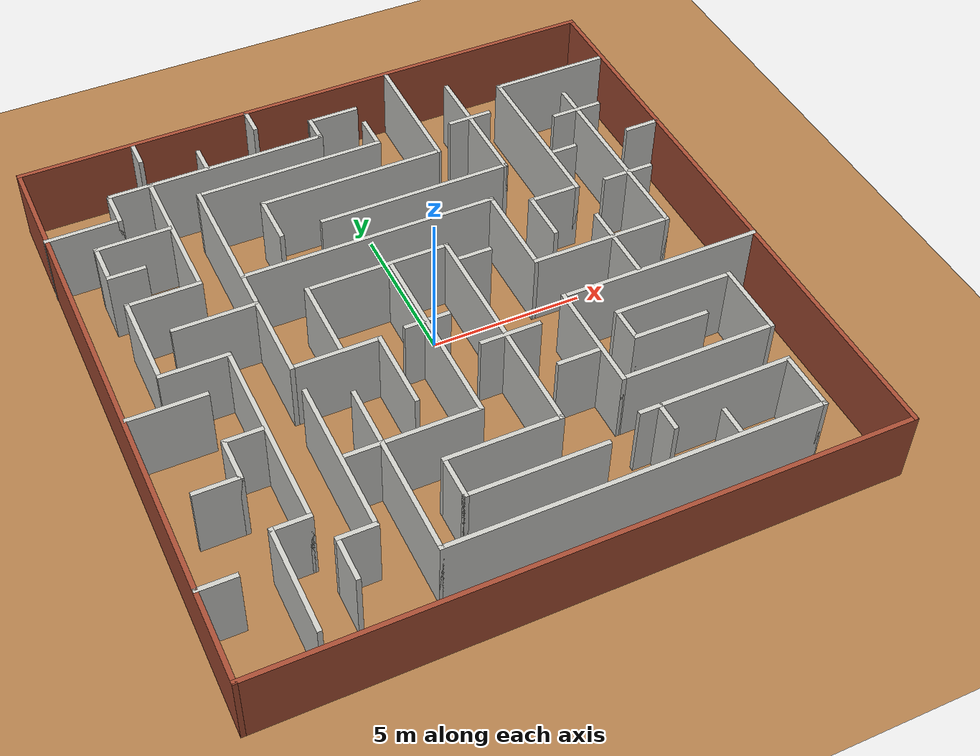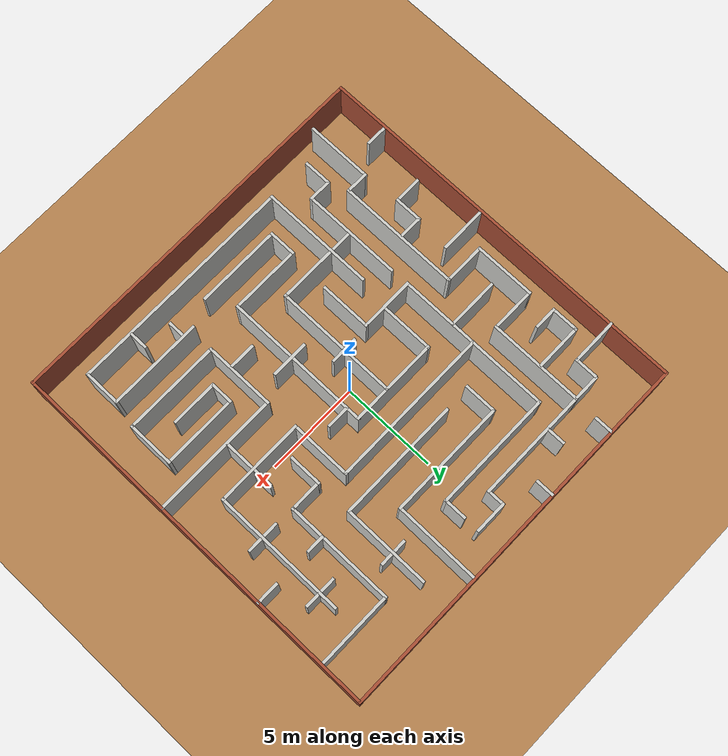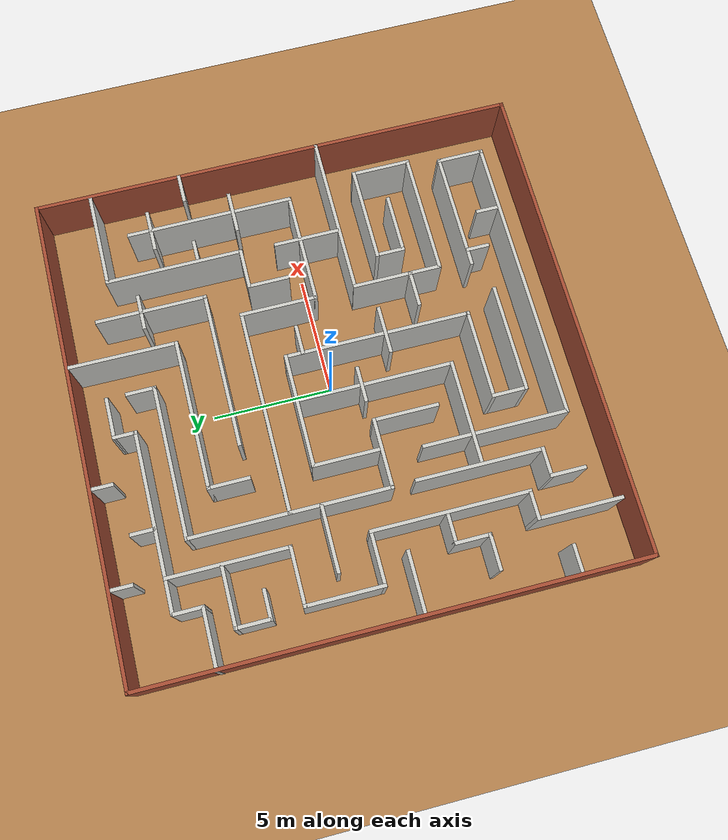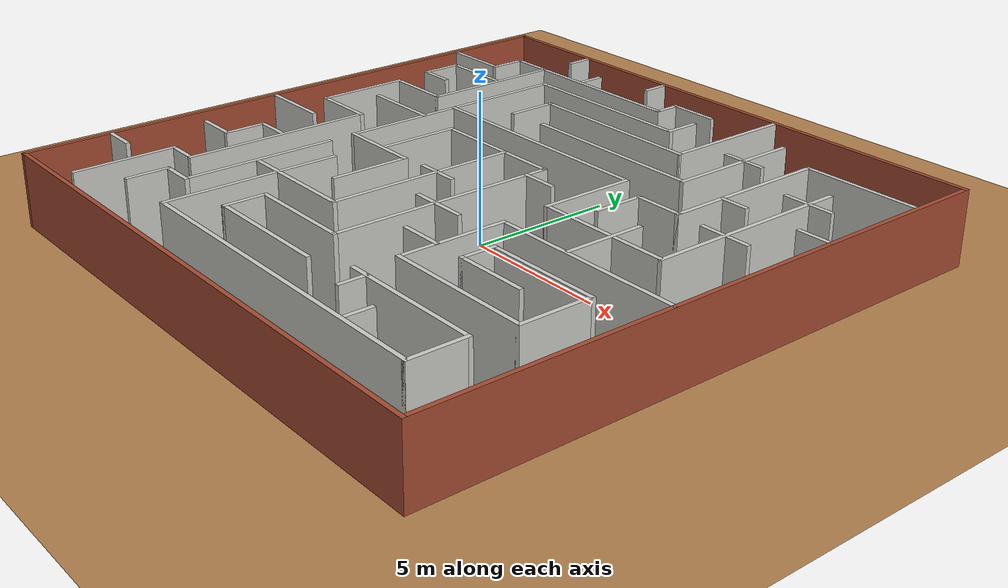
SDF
<sdf version="1.6">
 <world name="default">
  <light name="sun" type="directional">
   <pose>0 0 10 0 -0 0</pose>
   <diffuse>0.8 0.8 0.8 1</diffuse>
   <specular>0.2 0.2 0.2 1</specular>
   <attenuation>
    <range>1000</range>
    <constant>0.9</constant>
    <linear>0.01</linear>
    <quadratic>0.001</quadratic>
   </attenuation>
   <direction>-0.5 0.1 -0.9</direction>
  </light>
  <model name="ground_plane">
   <static>1</static>
   <link name="link">
    <collision name="collision">
     <geometry><plane><normal>0 0 1</normal><size>20 20</size></plane></geometry>
     <surface>
      <contact><collide_bitmask>65535</collide_bitmask></contact>
      <friction><ode><mu>100</mu><mu2>50</mu2></ode></friction>
     </surface>
    </collision>
    <visual name="visual">
     <cast_shadows>0</cast_shadows>
     <geometry><plane><normal>0 0 1</normal><size>20 20</size></plane></geometry>
     <material>
      <script><uri>file://media/materials/scripts/kitchen.material</uri><name>Kitchen/WoodFloor</name></script>
     </material>
    </visual>
   </link>
  </model>
  <gravity>0 0 -9.8</gravity>
  <magnetic_field>6e-06 2.3e-05 -4.2e-05</magnetic_field>
  <atmosphere type="adiabatic"/>
  <physics name="default_physics" default="0" type="ode">
   <max_step_size>0.001</max_step_size>
   <real_time_factor>1</real_time_factor>
   <real_time_update_rate>1000</real_time_update_rate>
  </physics>
  <scene><ambient>0.4 0.4 0.4 1</ambient><background>0.7 0.7 0.7 1</background><shadows>1</shadows></scene>
  <audio><device>default</device></audio>
  <spherical_coordinates>
   <surface_model>EARTH_WGS84</surface_model>
   <latitude_deg>0</latitude_deg>
   <longitude_deg>0</longitude_deg>
   <elevation>0</elevation>
   <heading_deg>0</heading_deg>
  </spherical_coordinates>
  <model name="maze-structure-colored">
   <pose>-0.006417 0.010984 0 0 -0 0</pose>
   <link name="Wall_10">
    <collision name="Wall_10_Collision">
     <geometry><box><size>20.2095 0.15 2.5</size></box></geometry>
     <pose>0 0 1.25 0 -0 0</pose>
    </collision>
    <visual name="Wall_10_Visual">
     <pose>0 0 1.25 0 -0 0</pose>
     <geometry><box><size>20.2095 0.15 2.5</size></box></geometry>
     <material>
      <script><uri>file://media/materials/scripts/gazebo.material</uri><name>Gazebo/Bricks</name></script>
      <ambient>0.996078 0.47451 0.0196078 1</ambient>
     </material>
     <meta><layer>0</layer></meta>
    </visual>
    <pose>0.00881 -10.175 0 0 -0 3.14159</pose>
   </link>
   <link name="Wall_101">
    <collision name="Wall_101_Collision">
     <geometry><box><size>2.5 0.15 2.5</size></box></geometry>
     <pose>0 0 1.25 0 -0 0</pose>
    </collision>
    <visual name="Wall_101_Visual">
     <pose>0 0 1.25 0 -0 0</pose>
     <geometry><box><size>2.5 0.15 2.5</size></box></geometry>
     <material>
      <script><uri>file://media/materials/scripts/gazebo.material</uri><name>Gazebo/CeilingTiled</name></script>
      <ambient>0.976471 0.94902 0.772549 1</ambient>
     </material>
     <meta><layer>0</layer></meta>
    </visual>
    <pose>-8.75958 -1.11398 0 0 -0 0</pose>
   </link>
   <link name="Wall_103">
    <collision name="Wall_103_Collision">
     <geometry><box><size>1.5 0.15 2.5</size></box></geometry>
     <pose>0 0 1.25 0 -0 0</pose>
    </collision>
    <visual name="Wall_103_Visual">
     <pose>0 0 1.25 0 -0 0</pose>
     <geometry><box><size>1.5 0.15 2.5</size></box></geometry>
     <material>
      <script><uri>file://media/materials/scripts/gazebo.material</uri><name>Gazebo/CeilingTiled</name></script>
      <ambient>0.976471 0.94902 0.772549 1</ambient>
     </material>
     <meta><layer>0</layer></meta>
    </visual>
    <pose>-8.39858 -4.30998 0 0 -0 0</pose>
   </link>
   <link name="Wall_104">
    <collision name="Wall_104_Collision">
     <geometry><box><size>1.5 0.15 2.5</size></box></geometry>
     <pose>0 0 1.25 0 -0 0</pose>
    </collision>
    <visual name="Wall_104_Visual">
     <pose>0 0 1.25 0 -0 0</pose>
     <geometry><box><size>1.5 0.15 2.5</size></box></geometry>
     <material>
      <script><uri>file://media/materials/scripts/gazebo.material</uri><name>Gazebo/CeilingTiled</name></script>
      <ambient>0.976471 0.94902 0.772549 1</ambient>
     </material>
     <meta><layer>0</layer></meta>
    </visual>
    <pose>-7.72358 -3.63498 0 0 -0 1.5708</pose>
   </link>
   <link name="Wall_105">
    <collision name="Wall_105_Collision">
     <geometry><box><size>1.25 0.15 2.5</size></box></geometry>
     <pose>0 0 1.25 0 -0 0</pose>
    </collision>
    <visual name="Wall_105_Visual">
     <pose>0 0 1.25 0 -0 0</pose>
     <geometry><box><size>1.25 0.15 2.5</size></box></geometry>
     <material>
      <script><uri>file://media/materials/scripts/gazebo.material</uri><name>Gazebo/CeilingTiled</name></script>
      <ambient>0.976471 0.94902 0.772549 1</ambient>
     </material>
     <meta><layer>0</layer></meta>
    </visual>
    <pose>-7.17358 -2.95998 0 0 -0 0</pose>
   </link>
   <link name="Wall_107">
    <collision name="Wall_107_Collision">
     <geometry><box><size>1.75 0.15 2.5</size></box></geometry>
     <pose>0 0 1.25 0 -0 0</pose>
    </collision>
    <visual name="Wall_107_Visual">
     <pose>0 0 1.25 0 -0 0</pose>
     <geometry><box><size>1.75 0.15 2.5</size></box></geometry>
     <material>
      <script><uri>file://media/materials/scripts/gazebo.material</uri><name>Gazebo/CeilingTiled</name></script>
      <ambient>0.976471 0.94902 0.772549 1</ambient>
     </material>
     <meta><layer>0</layer></meta>
    </visual>
    <pose>-3.34171 4.90352 0 0 -0 1.5708</pose>
   </link>
   <link name="Wall_108">
    <collision name="Wall_108_Collision">
     <geometry><box><size>6.25 0.15 2.5</size></box></geometry>
     <pose>0 0 1.25 0 -0 0</pose>
    </collision>
    <visual name="Wall_108_Visual">
     <pose>0 0 1.25 0 -0 0</pose>
     <geometry><box><size>6.25 0.15 2.5</size></box></geometry>
     <material>
      <script><uri>file://media/materials/scripts/gazebo.material</uri><name>Gazebo/CeilingTiled</name></script>
      <ambient>0.976471 0.94902 0.772549 1</ambient>
     </material>
     <meta><layer>0</layer></meta>
    </visual>
    <pose>-0.291712 5.70352 0 0 -0 0</pose>
   </link>
   <link name="Wall_109">
    <collision name="Wall_109_Collision">
     <geometry><box><size>4.50008 0.15 2.5</size></box></geometry>
     <pose>0 0 1.25 0 -0 0</pose>
    </collision>
    <visual name="Wall_109_Visual">
     <pose>0 0 1.25 0 -0 0</pose>
     <geometry><box><size>4.50008 0.15 2.5</size></box></geometry>
     <material>
      <script><uri>file://media/materials/scripts/gazebo.material</uri><name>Gazebo/CeilingTiled</name></script>
      <ambient>0.976471 0.94902 0.772549 1</ambient>
     </material>
     <meta><layer>0</layer></meta>
    </visual>
    <pose>2.77159 7.87852 0 0 -0 1.56468</pose>
   </link>
   <link name="Wall_11">
    <collision name="Wall_11_Collision">
     <geometry><box><size>20.5 0.15 2.5</size></box></geometry>
     <pose>0 0 1.25 0 -0 0</pose>
    </collision>
    <visual name="Wall_11_Visual">
     <pose>0 0 1.25 0 -0 0</pose>
     <geometry><box><size>20.5 0.15 2.5</size></box></geometry>
     <material>
      <script><uri>file://media/materials/scripts/gazebo.material</uri><name>Gazebo/Bricks</name></script>
      <ambient>0.996078 0.47451 0.0196078 1</ambient>
     </material>
     <meta><layer>0</layer></meta>
    </visual>
    <pose>-10.021 -0 0 0 -0 1.5708</pose>
   </link>
   <link name="Wall_111">
    <collision name="Wall_111_Collision">
     <geometry><box><size>1 0.15 2.5</size></box></geometry>
     <pose>0 0 1.25 0 -0 0</pose>
    </collision>
    <visual name="Wall_111_Visual">
     <pose>0 0 1.25 0 -0 0</pose>
     <geometry><box><size>1 0.15 2.5</size></box></geometry>
     <material>
      <script><uri>file://media/materials/scripts/gazebo.material</uri><name>Gazebo/CeilingTiled</name></script>
      <ambient>0.976471 0.94902 0.772549 1</ambient>
     </material>
     <meta><layer>0</layer></meta>
    </visual>
    <pose>-6.25294 9.70208 0 0 -0 1.5708</pose>
   </link>
   <link name="Wall_113">
    <collision name="Wall_113_Collision">
     <geometry><box><size>1 0.15 2.5</size></box></geometry>
     <pose>0 0 1.25 0 -0 0</pose>
    </collision>
    <visual name="Wall_113_Visual">
     <pose>0 0 1.25 0 -0 0</pose>
     <geometry><box><size>1 0.15 2.5</size></box></geometry>
     <material>
      <script><uri>file://media/materials/scripts/gazebo.material</uri><name>Gazebo/CeilingTiled</name></script>
      <ambient>0.976471 0.94902 0.772549 1</ambient>
     </material>
     <meta><layer>0</layer></meta>
    </visual>
    <pose>-2.29841 9.71384 0 0 -0 1.5708</pose>
   </link>
   <link name="Wall_115">
    <collision name="Wall_115_Collision">
     <geometry><box><size>1 0.15 2.5</size></box></geometry>
     <pose>0 0 1.25 0 -0 0</pose>
    </collision>
    <visual name="Wall_115_Visual">
     <pose>0 0 1.25 0 -0 0</pose>
     <geometry><box><size>1 0.15 2.5</size></box></geometry>
     <material>
      <script><uri>file://media/materials/scripts/gazebo.material</uri><name>Gazebo/CeilingTiled</name></script>
      <ambient>0.976471 0.94902 0.772549 1</ambient>
     </material>
     <meta><layer>0</layer></meta>
    </visual>
    <pose>-4.39199 8.50422 0 0 -0 1.5708</pose>
   </link>
   <link name="Wall_117">
    <collision name="Wall_117_Collision">
     <geometry><box><size>6.5 0.15 2.5</size></box></geometry>
     <pose>0 0 1.25 0 -0 0</pose>
    </collision>
    <visual name="Wall_117_Visual">
     <pose>0 0 1.25 0 -0 0</pose>
     <geometry><box><size>6.5 0.15 2.5</size></box></geometry>
     <material>
      <script><uri>file://media/materials/scripts/gazebo.material</uri><name>Gazebo/CeilingTiled</name></script>
      <ambient>0.976471 0.94902 0.772549 1</ambient>
     </material>
     <meta><layer>0</layer></meta>
    </visual>
    <pose>1.24878 4.16464 0 0 -0 0</pose>
   </link>
   <link name="Wall_118">
    <collision name="Wall_118_Collision">
     <geometry><box><size>4.617 0.15 2.5</size></box></geometry>
     <pose>0 0 1.25 0 -0 0</pose>
    </collision>
    <visual name="Wall_118_Visual">
     <pose>0 0 1.25 0 -0 0</pose>
     <geometry><box><size>4.617 0.15 2.5</size></box></geometry>
     <material>
      <script><uri>file://media/materials/scripts/gazebo.material</uri><name>Gazebo/CeilingTiled</name></script>
      <ambient>0.976471 0.94902 0.772549 1</ambient>
     </material>
     <meta><layer>0</layer></meta>
    </visual>
    <pose>4.42378 6.39814 0 0 -0 1.5708</pose>
   </link>
   <link name="Wall_120">
    <collision name="Wall_120_Collision">
     <geometry><box><size>1.5 0.15 2.5</size></box></geometry>
     <pose>0 0 1.25 0 -0 0</pose>
    </collision>
    <visual name="Wall_120_Visual">
     <pose>0 0 1.25 0 -0 0</pose>
     <geometry><box><size>1.5 0.15 2.5</size></box></geometry>
     <material>
      <script><uri>file://media/materials/scripts/gazebo.material</uri><name>Gazebo/CeilingTiled</name></script>
      <ambient>0.976471 0.94902 0.772549 1</ambient>
     </material>
     <meta><layer>0</layer></meta>
    </visual>
    <pose>4.41802 6.82308 0 0 -0 0</pose>
   </link>
   <link name="Wall_122">
    <collision name="Wall_122_Collision">
     <geometry><box><size>2.75 0.15 2.5</size></box></geometry>
     <pose>0 0 1.25 0 -0 0</pose>
    </collision>
    <visual name="Wall_122_Visual">
     <pose>0 0 1.25 0 -0 0</pose>
     <geometry><box><size>2.75 0.15 2.5</size></box></geometry>
     <material>
      <script><uri>file://media/materials/scripts/gazebo.material</uri><name>Gazebo/CeilingTiled</name></script>
      <ambient>0.976471 0.94902 0.772549 1</ambient>
     </material>
     <meta><layer>0</layer></meta>
    </visual>
    <pose>5.98285 -0.478507 0 0 -0 -1.5708</pose>
   </link>
   <link name="Wall_124">
    <collision name="Wall_124_Collision">
     <geometry><box><size>1.25 0.15 2.5</size></box></geometry>
     <pose>0 0 1.25 0 -0 0</pose>
    </collision>
    <visual name="Wall_124_Visual">
     <pose>0 0 1.25 0 -0 0</pose>
     <geometry><box><size>1.25 0.15 2.5</size></box></geometry>
     <material>
      <script><uri>file://media/materials/scripts/gazebo.material</uri><name>Gazebo/CeilingTiled</name></script>
      <ambient>0.976471 0.94902 0.772549 1</ambient>
     </material>
     <meta><layer>0</layer></meta>
    </visual>
    <pose>1.68281 0.868017 0 0 -0 0</pose>
   </link>
   <link name="Wall_126">
    <collision name="Wall_126_Collision">
     <geometry><box><size>6 0.15 2.5</size></box></geometry>
     <pose>0 0 1.25 0 -0 0</pose>
    </collision>
    <visual name="Wall_126_Visual">
     <pose>0 0 1.25 0 -0 0</pose>
     <geometry><box><size>6 0.15 2.5</size></box></geometry>
     <material>
      <script><uri>file://media/materials/scripts/gazebo.material</uri><name>Gazebo/CeilingTiled</name></script>
      <ambient>0.976471 0.94902 0.772549 1</ambient>
     </material>
     <meta><layer>0</layer></meta>
    </visual>
    <pose>-3.78718 -5.73237 0 0 -0 -1.5708</pose>
   </link>
   <link name="Wall_127">
    <collision name="Wall_127_Collision">
     <geometry><box><size>12 0.15 2.5</size></box></geometry>
     <pose>0 0 1.25 0 -0 0</pose>
    </collision>
    <visual name="Wall_127_Visual">
     <pose>0 0 1.25 0 -0 0</pose>
     <geometry><box><size>12 0.15 2.5</size></box></geometry>
     <material>
      <script><uri>file://media/materials/scripts/gazebo.material</uri><name>Gazebo/CeilingTiled</name></script>
      <ambient>0.976471 0.94902 0.772549 1</ambient>
     </material>
     <meta><layer>0</layer></meta>
    </visual>
    <pose>2.13782 -8.65737 0 0 -0 0</pose>
   </link>
   <link name="Wall_128">
    <collision name="Wall_128_Collision">
     <geometry><box><size>2 0.15 2.5</size></box></geometry>
     <pose>0 0 1.25 0 -0 0</pose>
    </collision>
    <visual name="Wall_128_Visual">
     <pose>0 0 1.25 0 -0 0</pose>
     <geometry><box><size>2 0.15 2.5</size></box></geometry>
     <material>
      <script><uri>file://media/materials/scripts/gazebo.material</uri><name>Gazebo/CeilingTiled</name></script>
      <ambient>0.976471 0.94902 0.772549 1</ambient>
     </material>
     <meta><layer>0</layer></meta>
    </visual>
    <pose>8.06282 -7.73237 0 0 -0 1.5708</pose>
   </link>
   <link name="Wall_129">
    <collision name="Wall_129_Collision">
     <geometry><box><size>5 0.15 2.5</size></box></geometry>
     <pose>0 0 1.25 0 -0 0</pose>
    </collision>
    <visual name="Wall_129_Visual">
     <pose>0 0 1.25 0 -0 0</pose>
     <geometry><box><size>5 0.15 2.5</size></box></geometry>
     <material>
      <script><uri>file://media/materials/scripts/gazebo.material</uri><name>Gazebo/CeilingTiled</name></script>
      <ambient>0.976471 0.94902 0.772549 1</ambient>
     </material>
     <meta><layer>0</layer></meta>
    </visual>
    <pose>5.63782 -6.80737 0 0 -0 3.14159</pose>
   </link>
   <link name="Wall_131">
    <collision name="Wall_131_Collision">
     <geometry><box><size>1 0.15 2.5</size></box></geometry>
     <pose>0 0 1.25 0 -0 0</pose>
    </collision>
    <visual name="Wall_131_Visual">
     <pose>0 0 1.25 0 -0 0</pose>
     <geometry><box><size>1 0.15 2.5</size></box></geometry>
     <material>
      <script><uri>file://media/materials/scripts/gazebo.material</uri><name>Gazebo/CeilingTiled</name></script>
      <ambient>0.976471 0.94902 0.772549 1</ambient>
     </material>
     <meta><layer>0</layer></meta>
    </visual>
    <pose>3.81216 -7.24079 0 0 -0 1.5708</pose>
   </link>
   <link name="Wall_133">
    <collision name="Wall_133_Collision">
     <geometry><box><size>1 0.15 2.5</size></box></geometry>
     <pose>0 0 1.25 0 -0 0</pose>
    </collision>
    <visual name="Wall_133_Visual">
     <pose>0 0 1.25 0 -0 0</pose>
     <geometry><box><size>1 0.15 2.5</size></box></geometry>
     <material>
      <script><uri>file://media/materials/scripts/gazebo.material</uri><name>Gazebo/CeilingTiled</name></script>
      <ambient>0.976471 0.94902 0.772549 1</ambient>
     </material>
     <meta><layer>0</layer></meta>
    </visual>
    <pose>5.37803 -8.15134 0 0 -0 1.5708</pose>
   </link>
   <link name="Wall_135">
    <collision name="Wall_135_Collision">
     <geometry><box><size>1.5 0.15 2.5</size></box></geometry>
     <pose>0 0 1.25 0 -0 0</pose>
    </collision>
    <visual name="Wall_135_Visual">
     <pose>0 0 1.25 0 -0 0</pose>
     <geometry><box><size>1.5 0.15 2.5</size></box></geometry>
     <material>
      <script><uri>file://media/materials/scripts/gazebo.material</uri><name>Gazebo/CeilingTiled</name></script>
      <ambient>0.976471 0.94902 0.772549 1</ambient>
     </material>
     <meta><layer>0</layer></meta>
    </visual>
    <pose>-0.739457 -1.08599 0 0 -0 0</pose>
   </link>
   <link name="Wall_19">
    <collision name="Wall_19_Collision">
     <geometry><box><size>3.5 0.15 2.5</size></box></geometry>
     <pose>0 0 1.25 0 -0 0</pose>
    </collision>
    <visual name="Wall_19_Visual">
     <pose>0 0 1.25 0 -0 0</pose>
     <geometry><box><size>3.5 0.15 2.5</size></box></geometry>
     <material>
      <script><uri>file://media/materials/scripts/gazebo.material</uri><name>Gazebo/CeilingTiled</name></script>
      <ambient>0.976471 0.94902 0.772549 1</ambient>
     </material>
     <meta><layer>0</layer></meta>
    </visual>
    <pose>-7.59463 -7.96282 0 0 -0 1.57077</pose>
   </link>
   <link name="Wall_20">
    <collision name="Wall_20_Collision">
     <geometry><box><size>1.25 0.15 2.5</size></box></geometry>
     <pose>0 0 1.25 0 -0 0</pose>
    </collision>
    <visual name="Wall_20_Visual">
     <pose>0 0 1.25 0 -0 0</pose>
     <geometry><box><size>1.25 0.15 2.5</size></box></geometry>
     <material>
      <script><uri>file://media/materials/scripts/gazebo.material</uri><name>Gazebo/CeilingTiled</name></script>
      <ambient>0.976471 0.94902 0.772549 1</ambient>
     </material>
     <meta><layer>0</layer></meta>
    </visual>
    <pose>-7.04458 -6.28798 0 0 -0 0</pose>
   </link>
   <link name="Wall_21">
    <collision name="Wall_21_Collision">
     <geometry><box><size>6.5 0.15 2.5</size></box></geometry>
     <pose>0 0 1.25 0 -0 0</pose>
    </collision>
    <visual name="Wall_21_Visual">
     <pose>0 0 1.25 0 -0 0</pose>
     <geometry><box><size>6.5 0.15 2.5</size></box></geometry>
     <material>
      <script><uri>file://media/materials/scripts/gazebo.material</uri><name>Gazebo/CeilingTiled</name></script>
      <ambient>0.976471 0.94902 0.772549 1</ambient>
     </material>
     <meta><layer>0</layer></meta>
    </visual>
    <pose>-6.49458 -3.11298 0 0 -0 1.5708</pose>
   </link>
   <link name="Wall_22">
    <collision name="Wall_22_Collision">
     <geometry><box><size>2.25 0.15 2.5</size></box></geometry>
     <pose>0 0 1.25 0 -0 0</pose>
    </collision>
    <visual name="Wall_22_Visual">
     <pose>0 0 1.25 0 -0 0</pose>
     <geometry><box><size>2.25 0.15 2.5</size></box></geometry>
     <material>
      <script><uri>file://media/materials/scripts/gazebo.material</uri><name>Gazebo/CeilingTiled</name></script>
      <ambient>0.976471 0.94902 0.772549 1</ambient>
     </material>
     <meta><layer>0</layer></meta>
    </visual>
    <pose>-7.54458 0.062016 0 0 -0 3.14159</pose>
   </link>
   <link name="Wall_23">
    <collision name="Wall_23_Collision">
     <geometry><box><size>3.25 0.15 2.5</size></box></geometry>
     <pose>0 0 1.25 0 -0 0</pose>
    </collision>
    <visual name="Wall_23_Visual">
     <pose>0 0 1.25 0 -0 0</pose>
     <geometry><box><size>3.25 0.15 2.5</size></box></geometry>
     <material>
      <script><uri>file://media/materials/scripts/gazebo.material</uri><name>Gazebo/CeilingTiled</name></script>
      <ambient>0.976471 0.94902 0.772549 1</ambient>
     </material>
     <meta><layer>0</layer></meta>
    </visual>
    <pose>-8.59458 1.61202 0 0 -0 1.5708</pose>
   </link>
   <link name="Wall_24">
    <collision name="Wall_24_Collision">
     <geometry><box><size>2.42589 0.15 2.5</size></box></geometry>
     <pose>0 0 1.25 0 -0 0</pose>
    </collision>
    <visual name="Wall_24_Visual">
     <pose>0 0 1.25 0 -0 0</pose>
     <geometry><box><size>2.42589 0.15 2.5</size></box></geometry>
     <material>
      <script><uri>file://media/materials/scripts/gazebo.material</uri><name>Gazebo/CeilingTiled</name></script>
      <ambient>0.976471 0.94902 0.772549 1</ambient>
     </material>
     <meta><layer>0</layer></meta>
    </visual>
    <pose>-7.45658 3.16202 0 0 -0 0</pose>
   </link>
   <link name="Wall_26">
    <collision name="Wall_26_Collision">
     <geometry><box><size>7.3032 0.15 2.5</size></box></geometry>
     <pose>0 0 1.25 0 -0 0</pose>
    </collision>
    <visual name="Wall_26_Visual">
     <pose>0 0 1.25 0 -0 0</pose>
     <geometry><box><size>7.3032 0.15 2.5</size></box></geometry>
     <material>
      <script><uri>file://media/materials/scripts/gazebo.material</uri><name>Gazebo/CeilingTiled</name></script>
      <ambient>0.976471 0.94902 0.772549 1</ambient>
     </material>
     <meta><layer>0</layer></meta>
    </visual>
    <pose>-4.06258 8.01201 0 0 -0 0</pose>
   </link>
   <link name="Wall_27">
    <collision name="Wall_27_Collision">
     <geometry><box><size>1 0.15 2.5</size></box></geometry>
     <pose>0 0 1.25 0 -0 0</pose>
    </collision>
    <visual name="Wall_27_Visual">
     <pose>0 0 1.25 0 -0 0</pose>
     <geometry><box><size>1 0.15 2.5</size></box></geometry>
     <material>
      <script><uri>file://media/materials/scripts/gazebo.material</uri><name>Gazebo/CeilingTiled</name></script>
      <ambient>0.976471 0.94902 0.772549 1</ambient>
     </material>
     <meta><layer>0</layer></meta>
    </visual>
    <pose>-0.485759 8.43718 0 0 -0 1.57121</pose>
   </link>
   <link name="Wall_28">
    <collision name="Wall_28_Collision">
     <geometry><box><size>1.75 0.15 2.5</size></box></geometry>
     <pose>0 0 1.25 0 -0 0</pose>
    </collision>
    <visual name="Wall_28_Visual">
     <pose>0 0 1.25 0 -0 0</pose>
     <geometry><box><size>1.75 0.15 2.5</size></box></geometry>
     <material>
      <script><uri>file://media/materials/scripts/gazebo.material</uri><name>Gazebo/CeilingTiled</name></script>
      <ambient>0.976471 0.94902 0.772549 1</ambient>
     </material>
     <meta><layer>0</layer></meta>
    </visual>
    <pose>0.314065 8.86235 0 0 -0 0</pose>
   </link>
   <link name="Wall_30">
    <collision name="Wall_30_Collision">
     <geometry><box><size>2.5 0.15 2.5</size></box></geometry>
     <pose>0 0 1.25 0 -0 0</pose>
    </collision>
    <visual name="Wall_30_Visual">
     <pose>0 0 1.25 0 -0 0</pose>
     <geometry><box><size>2.5 0.15 2.5</size></box></geometry>
     <material>
      <script><uri>file://media/materials/scripts/gazebo.material</uri><name>Gazebo/CeilingTiled</name></script>
      <ambient>0.976471 0.94902 0.772549 1</ambient>
     </material>
     <meta><layer>0</layer></meta>
    </visual>
    <pose>-8.86358 6.84902 0 0 -0 0</pose>
   </link>
   <link name="Wall_31">
    <collision name="Wall_31_Collision">
     <geometry><box><size>1.25 0.15 2.5</size></box></geometry>
     <pose>0 0 1.25 0 -0 0</pose>
    </collision>
    <visual name="Wall_31_Visual">
     <pose>0 0 1.25 0 -0 0</pose>
     <geometry><box><size>1.25 0.15 2.5</size></box></geometry>
     <material>
      <script><uri>file://media/materials/scripts/gazebo.material</uri><name>Gazebo/CeilingTiled</name></script>
      <ambient>0.976471 0.94902 0.772549 1</ambient>
     </material>
     <meta><layer>0</layer></meta>
    </visual>
    <pose>-7.68858 7.39902 0 0 -0 1.5708</pose>
   </link>
   <link name="Wall_33">
    <collision name="Wall_33_Collision">
     <geometry><box><size>5 0.15 2.5</size></box></geometry>
     <pose>0 0 1.25 0 -0 0</pose>
    </collision>
    <visual name="Wall_33_Visual">
     <pose>0 0 1.25 0 -0 0</pose>
     <geometry><box><size>5 0.15 2.5</size></box></geometry>
     <material>
      <script><uri>file://media/materials/scripts/gazebo.material</uri><name>Gazebo/CeilingTiled</name></script>
      <ambient>0.976471 0.94902 0.772549 1</ambient>
     </material>
     <meta><layer>0</layer></meta>
    </visual>
    <pose>-6.31858 5.58702 0 0 -0 1.5708</pose>
   </link>
   <link name="Wall_38">
    <collision name="Wall_38_Collision">
     <geometry><box><size>1.25 0.15 2.5</size></box></geometry>
     <pose>0 0 1.25 0 -0 0</pose>
    </collision>
    <visual name="Wall_38_Visual">
     <pose>0 0 1.25 0 -0 0</pose>
     <geometry><box><size>1.25 0.15 2.5</size></box></geometry>
     <material>
      <script><uri>file://media/materials/scripts/gazebo.material</uri><name>Gazebo/CeilingTiled</name></script>
      <ambient>0.976471 0.94902 0.772549 1</ambient>
     </material>
     <meta><layer>0</layer></meta>
    </visual>
    <pose>1.12782 7.47891 0 0 -0 -1.5708</pose>
   </link>
   <link name="Wall_39">
    <collision name="Wall_39_Collision">
     <geometry><box><size>6.33003 0.15 2.5</size></box></geometry>
     <pose>0 0 1.25 0 -0 0</pose>
    </collision>
    <visual name="Wall_39_Visual">
     <pose>0 0 1.25 0 -0 0</pose>
     <geometry><box><size>6.33003 0.15 2.5</size></box></geometry>
     <material>
      <script><uri>file://media/materials/scripts/gazebo.material</uri><name>Gazebo/CeilingTiled</name></script>
      <ambient>0.976471 0.94902 0.772549 1</ambient>
     </material>
     <meta><layer>0</layer></meta>
    </visual>
    <pose>-1.96208 6.92891 0 0 -0 3.14159</pose>
   </link>
   <link name="Wall_40">
    <collision name="Wall_40_Collision">
     <geometry><box><size>8.26024 0.15 2.5</size></box></geometry>
     <pose>0 0 1.25 0 -0 0</pose>
    </collision>
    <visual name="Wall_40_Visual">
     <pose>0 0 1.25 0 -0 0</pose>
     <geometry><box><size>8.26024 0.15 2.5</size></box></geometry>
     <material>
      <script><uri>file://media/materials/scripts/gazebo.material</uri><name>Gazebo/CeilingTiled</name></script>
      <ambient>0.976471 0.94902 0.772549 1</ambient>
     </material>
     <meta><layer>0</layer></meta>
    </visual>
    <pose>-5.05198 2.8738 0 0 -0 -1.5708</pose>
   </link>
   <link name="Wall_41">
    <collision name="Wall_41_Collision">
     <geometry><box><size>2.91182 0.15 2.5</size></box></geometry>
     <pose>0 0 1.25 0 -0 0</pose>
    </collision>
    <visual name="Wall_41_Visual">
     <pose>0 0 1.25 0 -0 0</pose>
     <geometry><box><size>2.91182 0.15 2.5</size></box></geometry>
     <material>
      <script><uri>file://media/materials/scripts/gazebo.material</uri><name>Gazebo/CeilingTiled</name></script>
      <ambient>0.976471 0.94902 0.772549 1</ambient>
     </material>
     <meta><layer>0</layer></meta>
    </visual>
    <pose>-3.67107 -1.18131 0 0 -0 0</pose>
   </link>
   <link name="Wall_42">
    <collision name="Wall_42_Collision">
     <geometry><box><size>2.73257 0.15 2.5</size></box></geometry>
     <pose>0 0 1.25 0 -0 0</pose>
    </collision>
    <visual name="Wall_42_Visual">
     <pose>0 0 1.25 0 -0 0</pose>
     <geometry><box><size>2.73257 0.15 2.5</size></box></geometry>
     <material>
      <script><uri>file://media/materials/scripts/gazebo.material</uri><name>Gazebo/CeilingTiled</name></script>
      <ambient>0.976471 0.94902 0.772549 1</ambient>
     </material>
     <meta><layer>0</layer></meta>
    </visual>
    <pose>-2.29016 -2.47257 0 0 -0 -1.5708</pose>
   </link>
   <link name="Wall_44">
    <collision name="Wall_44_Collision">
     <geometry><box><size>2.75 0.15 2.5</size></box></geometry>
     <pose>0 0 1.25 0 -0 0</pose>
    </collision>
    <visual name="Wall_44_Visual">
     <pose>0 0 1.25 0 -0 0</pose>
     <geometry><box><size>2.75 0.15 2.5</size></box></geometry>
     <material>
      <script><uri>file://media/materials/scripts/gazebo.material</uri><name>Gazebo/CeilingTiled</name></script>
      <ambient>0.976471 0.94902 0.772549 1</ambient>
     </material>
     <meta><layer>0</layer></meta>
    </visual>
    <pose>-6.37279 1.63693 0 0 -0 3.14159</pose>
   </link>
   <link name="Wall_46">
    <collision name="Wall_46_Collision">
     <geometry><box><size>2.5 0.15 2.5</size></box></geometry>
     <pose>0 0 1.25 0 -0 0</pose>
    </collision>
    <visual name="Wall_46_Visual">
     <pose>0 0 1.25 0 -0 0</pose>
     <geometry><box><size>2.5 0.15 2.5</size></box></geometry>
     <material>
      <script><uri>file://media/materials/scripts/gazebo.material</uri><name>Gazebo/CeilingTiled</name></script>
      <ambient>0.976471 0.94902 0.772549 1</ambient>
     </material>
     <meta><layer>0</layer></meta>
    </visual>
    <pose>-7.57081 5.84431 0 0 -0 3.14159</pose>
   </link>
   <link name="Wall_47">
    <collision name="Wall_47_Collision">
     <geometry><box><size>1.49273 0.15 2.5</size></box></geometry>
     <pose>0 0 1.25 0 -0 0</pose>
    </collision>
    <visual name="Wall_47_Visual">
     <pose>0 0 1.25 0 -0 0</pose>
     <geometry><box><size>1.49273 0.15 2.5</size></box></geometry>
     <material>
      <script><uri>file://media/materials/scripts/gazebo.material</uri><name>Gazebo/CeilingTiled</name></script>
      <ambient>0.976471 0.94902 0.772549 1</ambient>
     </material>
     <meta><layer>0</layer></meta>
    </visual>
    <pose>-8.74581 5.17294 0 0 -0 -1.5708</pose>
   </link>
   <link name="Wall_48">
    <collision name="Wall_48_Collision">
     <geometry><box><size>1.25 0.15 2.5</size></box></geometry>
     <pose>0 0 1.25 0 -0 0</pose>
    </collision>
    <visual name="Wall_48_Visual">
     <pose>0 0 1.25 0 -0 0</pose>
     <geometry><box><size>1.25 0.15 2.5</size></box></geometry>
     <material>
      <script><uri>file://media/materials/scripts/gazebo.material</uri><name>Gazebo/CeilingTiled</name></script>
      <ambient>0.976471 0.94902 0.772549 1</ambient>
     </material>
     <meta><layer>0</layer></meta>
    </visual>
    <pose>-8.19581 4.50157 0 0 -0 0</pose>
   </link>
   <link name="Wall_53">
    <collision name="Wall_53_Collision">
     <geometry><box><size>8.5 0.15 2.5</size></box></geometry>
     <pose>0 0 1.25 0 -0 0</pose>
    </collision>
    <visual name="Wall_53_Visual">
     <pose>0 0 1.25 0 -0 0</pose>
     <geometry><box><size>8.5 0.15 2.5</size></box></geometry>
     <material>
      <script><uri>file://media/materials/scripts/gazebo.material</uri><name>Gazebo/CeilingTiled</name></script>
      <ambient>0.976471 0.94902 0.772549 1</ambient>
     </material>
     <meta><layer>0</layer></meta>
    </visual>
    <pose>-0.86828 2.89105 0 0 -0 0</pose>
   </link>
   <link name="Wall_54">
    <collision name="Wall_54_Collision">
     <geometry><box><size>3.25 0.15 2.5</size></box></geometry>
     <pose>0 0 1.25 0 -0 0</pose>
    </collision>
    <visual name="Wall_54_Visual">
     <pose>0 0 1.25 0 -0 0</pose>
     <geometry><box><size>3.25 0.15 2.5</size></box></geometry>
     <material>
      <script><uri>file://media/materials/scripts/gazebo.material</uri><name>Gazebo/CeilingTiled</name></script>
      <ambient>0.976471 0.94902 0.772549 1</ambient>
     </material>
     <meta><layer>0</layer></meta>
    </visual>
    <pose>3.30672 1.34105 0 0 -0 -1.5708</pose>
   </link>
   <link name="Wall_55">
    <collision name="Wall_55_Collision">
     <geometry><box><size>4.73251 0.15 2.5</size></box></geometry>
     <pose>0 0 1.25 0 -0 0</pose>
    </collision>
    <visual name="Wall_55_Visual">
     <pose>0 0 1.25 0 -0 0</pose>
     <geometry><box><size>4.73251 0.15 2.5</size></box></geometry>
     <material>
      <script><uri>file://media/materials/scripts/gazebo.material</uri><name>Gazebo/CeilingTiled</name></script>
      <ambient>0.976471 0.94902 0.772549 1</ambient>
     </material>
     <meta><layer>0</layer></meta>
    </visual>
    <pose>5.59797 -0.208949 0 0 -0 0</pose>
   </link>
   <link name="Wall_56">
    <collision name="Wall_56_Collision">
     <geometry><box><size>7 0.15 2.5</size></box></geometry>
     <pose>0 0 1.25 0 -0 0</pose>
    </collision>
    <visual name="Wall_56_Visual">
     <pose>0 0 1.25 0 -0 0</pose>
     <geometry><box><size>7 0.15 2.5</size></box></geometry>
     <material>
      <script><uri>file://media/materials/scripts/gazebo.material</uri><name>Gazebo/CeilingTiled</name></script>
      <ambient>0.976471 0.94902 0.772549 1</ambient>
     </material>
     <meta><layer>0</layer></meta>
    </visual>
    <pose>7.88923 3.21605 0 0 -0 1.5708</pose>
   </link>
   <link name="Wall_58">
    <collision name="Wall_58_Collision">
     <geometry><box><size>1.75 0.15 2.5</size></box></geometry>
     <pose>0 0 1.25 0 -0 0</pose>
    </collision>
    <visual name="Wall_58_Visual">
     <pose>0 0 1.25 0 -0 0</pose>
     <geometry><box><size>1.75 0.15 2.5</size></box></geometry>
     <material>
      <script><uri>file://media/materials/scripts/gazebo.material</uri><name>Gazebo/CeilingTiled</name></script>
      <ambient>0.976471 0.94902 0.772549 1</ambient>
     </material>
     <meta><layer>0</layer></meta>
    </visual>
    <pose>4.44629 1.50645 0 0 -0 1.5708</pose>
   </link>
   <link name="Wall_59">
    <collision name="Wall_59_Collision">
     <geometry><box><size>1.75 0.15 2.5</size></box></geometry>
     <pose>0 0 1.25 0 -0 0</pose>
    </collision>
    <visual name="Wall_59_Visual">
     <pose>0 0 1.25 0 -0 0</pose>
     <geometry><box><size>1.75 0.15 2.5</size></box></geometry>
     <material>
      <script><uri>file://media/materials/scripts/gazebo.material</uri><name>Gazebo/CeilingTiled</name></script>
      <ambient>0.976471 0.94902 0.772549 1</ambient>
     </material>
     <meta><layer>0</layer></meta>
    </visual>
    <pose>5.24629 2.30645 0 0 -0 0</pose>
   </link>
   <link name="Wall_60">
    <collision name="Wall_60_Collision">
     <geometry><box><size>5.75 0.15 2.5</size></box></geometry>
     <pose>0 0 1.25 0 -0 0</pose>
    </collision>
    <visual name="Wall_60_Visual">
     <pose>0 0 1.25 0 -0 0</pose>
     <geometry><box><size>5.75 0.15 2.5</size></box></geometry>
     <material>
      <script><uri>file://media/materials/scripts/gazebo.material</uri><name>Gazebo/CeilingTiled</name></script>
      <ambient>0.976471 0.94902 0.772549 1</ambient>
     </material>
     <meta><layer>0</layer></meta>
    </visual>
    <pose>6.04629 5.10645 0 0 -0 1.5708</pose>
   </link>
   <link name="Wall_61">
    <collision name="Wall_61_Collision">
     <geometry><box><size>4 0.15 2.5</size></box></geometry>
     <pose>0 0 1.25 0 -0 0</pose>
    </collision>
    <visual name="Wall_61_Visual">
     <pose>0 0 1.25 0 -0 0</pose>
     <geometry><box><size>4 0.15 2.5</size></box></geometry>
     <material>
      <script><uri>file://media/materials/scripts/gazebo.material</uri><name>Gazebo/CeilingTiled</name></script>
      <ambient>0.976471 0.94902 0.772549 1</ambient>
     </material>
     <meta><layer>0</layer></meta>
    </visual>
    <pose>7.97129 7.90645 0 0 -0 0</pose>
   </link>
   <link name="Wall_65">
    <collision name="Wall_65_Collision">
     <geometry><box><size>1.75 0.15 2.5</size></box></geometry>
     <pose>0 0 1.25 0 -0 0</pose>
    </collision>
    <visual name="Wall_65_Visual">
     <pose>0 0 1.25 0 -0 0</pose>
     <geometry><box><size>1.75 0.15 2.5</size></box></geometry>
     <material>
      <script><uri>file://media/materials/scripts/gazebo.material</uri><name>Gazebo/CeilingTiled</name></script>
      <ambient>0.976471 0.94902 0.772549 1</ambient>
     </material>
     <meta><layer>0</layer></meta>
    </visual>
    <pose>7.87042 5.72294 0 0 -0 0</pose>
   </link>
   <link name="Wall_67">
    <collision name="Wall_67_Collision">
     <geometry><box><size>1 0.15 2.5</size></box></geometry>
     <pose>0 0 1.25 0 -0 0</pose>
    </collision>
    <visual name="Wall_67_Visual">
     <pose>0 0 1.25 0 -0 0</pose>
     <geometry><box><size>1 0.15 2.5</size></box></geometry>
     <material>
      <script><uri>file://media/materials/scripts/gazebo.material</uri><name>Gazebo/CeilingTiled</name></script>
      <ambient>0.976471 0.94902 0.772549 1</ambient>
     </material>
     <meta><layer>0</layer></meta>
    </visual>
    <pose>6.49532 4.10472 0 0 -0 0</pose>
   </link>
   <link name="Wall_69">
    <collision name="Wall_69_Collision">
     <geometry><box><size>1.25 0.15 2.5</size></box></geometry>
     <pose>0 0 1.25 0 -0 0</pose>
    </collision>
    <visual name="Wall_69_Visual">
     <pose>0 0 1.25 0 -0 0</pose>
     <geometry><box><size>1.25 0.15 2.5</size></box></geometry>
     <material>
      <script><uri>file://media/materials/scripts/gazebo.material</uri><name>Gazebo/CeilingTiled</name></script>
      <ambient>0.976471 0.94902 0.772549 1</ambient>
     </material>
     <meta><layer>0</layer></meta>
    </visual>
    <pose>9.48027 4.09086 0 0 -0 3.14159</pose>
   </link>
   <link name="Wall_71">
    <collision name="Wall_71_Collision">
     <geometry><box><size>1.75 0.15 2.5</size></box></geometry>
     <pose>0 0 1.25 0 -0 0</pose>
    </collision>
    <visual name="Wall_71_Visual">
     <pose>0 0 1.25 0 -0 0</pose>
     <geometry><box><size>1.75 0.15 2.5</size></box></geometry>
     <material>
      <script><uri>file://media/materials/scripts/gazebo.material</uri><name>Gazebo/CeilingTiled</name></script>
      <ambient>0.976471 0.94902 0.772549 1</ambient>
     </material>
     <meta><layer>0</layer></meta>
    </visual>
    <pose>7.87479 2.22991 0 0 -0 0</pose>
   </link>
   <link name="Wall_73">
    <collision name="Wall_73_Collision">
     <geometry><box><size>6.75 0.15 2.5</size></box></geometry>
     <pose>0 0 1.25 0 -0 0</pose>
    </collision>
    <visual name="Wall_73_Visual">
     <pose>0 0 1.25 0 -0 0</pose>
     <geometry><box><size>6.75 0.15 2.5</size></box></geometry>
     <material>
      <script><uri>file://media/materials/scripts/gazebo.material</uri><name>Gazebo/CeilingTiled</name></script>
      <ambient>0.976471 0.94902 0.772549 1</ambient>
     </material>
     <meta><layer>0</layer></meta>
    </visual>
    <pose>6.7183 -1.88271 0 0 -0 3.14159</pose>
   </link>
   <link name="Wall_74">
    <collision name="Wall_74_Collision">
     <geometry><box><size>3.75 0.15 2.5</size></box></geometry>
     <pose>0 0 1.25 0 -0 0</pose>
    </collision>
    <visual name="Wall_74_Visual">
     <pose>0 0 1.25 0 -0 0</pose>
     <geometry><box><size>3.75 0.15 2.5</size></box></geometry>
     <material>
      <script><uri>file://media/materials/scripts/gazebo.material</uri><name>Gazebo/CeilingTiled</name></script>
      <ambient>0.976471 0.94902 0.772549 1</ambient>
     </material>
     <meta><layer>0</layer></meta>
    </visual>
    <pose>3.38771 -3.68271 0 0 -0 -1.5708</pose>
   </link>
   <link name="Wall_75">
    <collision name="Wall_75_Collision">
     <geometry><box><size>5.12236 0.15 2.5</size></box></geometry>
     <pose>0 0 1.25 0 -0 0</pose>
    </collision>
    <visual name="Wall_75_Visual">
     <pose>0 0 1.25 0 -0 0</pose>
     <geometry><box><size>5.12236 0.15 2.5</size></box></geometry>
     <material>
      <script><uri>file://media/materials/scripts/gazebo.material</uri><name>Gazebo/CeilingTiled</name></script>
      <ambient>0.976471 0.94902 0.772549 1</ambient>
     </material>
     <meta><layer>0</layer></meta>
    </visual>
    <pose>5.87389 -5.48271 0 0 -0 0</pose>
   </link>
   <link name="Wall_76">
    <collision name="Wall_76_Collision">
     <geometry><box><size>2.5 0.15 2.5</size></box></geometry>
     <pose>0 0 1.25 0 -0 0</pose>
    </collision>
    <visual name="Wall_76_Visual">
     <pose>0 0 1.25 0 -0 0</pose>
     <geometry><box><size>2.5 0.15 2.5</size></box></geometry>
     <material>
      <script><uri>file://media/materials/scripts/gazebo.material</uri><name>Gazebo/CeilingTiled</name></script>
      <ambient>0.976471 0.94902 0.772549 1</ambient>
     </material>
     <meta><layer>0</layer></meta>
    </visual>
    <pose>8.36007 -4.30771 0 0 -0 1.5708</pose>
   </link>
   <link name="Wall_77">
    <collision name="Wall_77_Collision">
     <geometry><box><size>4 0.15 2.5</size></box></geometry>
     <pose>0 0 1.25 0 -0 0</pose>
    </collision>
    <visual name="Wall_77_Visual">
     <pose>0 0 1.25 0 -0 0</pose>
     <geometry><box><size>4 0.15 2.5</size></box></geometry>
     <material>
      <script><uri>file://media/materials/scripts/gazebo.material</uri><name>Gazebo/CeilingTiled</name></script>
      <ambient>0.976471 0.94902 0.772549 1</ambient>
     </material>
     <meta><layer>0</layer></meta>
    </visual>
    <pose>6.43507 -3.13271 0 0 -0 3.14159</pose>
   </link>
   <link name="Wall_78">
    <collision name="Wall_78_Collision">
     <geometry><box><size>1.25 0.15 2.5</size></box></geometry>
     <pose>0 0 1.25 0 -0 0</pose>
    </collision>
    <visual name="Wall_78_Visual">
     <pose>0 0 1.25 0 -0 0</pose>
     <geometry><box><size>1.25 0.15 2.5</size></box></geometry>
     <material>
      <script><uri>file://media/materials/scripts/gazebo.material</uri><name>Gazebo/CeilingTiled</name></script>
      <ambient>0.976471 0.94902 0.772549 1</ambient>
     </material>
     <meta><layer>0</layer></meta>
    </visual>
    <pose>4.51007 -3.68271 0 0 -0 -1.5708</pose>
   </link>
   <link name="Wall_79">
    <collision name="Wall_79_Collision">
     <geometry><box><size>2.5 0.15 2.5</size></box></geometry>
     <pose>0 0 1.25 0 -0 0</pose>
    </collision>
    <visual name="Wall_79_Visual">
     <pose>0 0 1.25 0 -0 0</pose>
     <geometry><box><size>2.5 0.15 2.5</size></box></geometry>
     <material>
      <script><uri>file://media/materials/scripts/gazebo.material</uri><name>Gazebo/CeilingTiled</name></script>
      <ambient>0.976471 0.94902 0.772549 1</ambient>
     </material>
     <meta><layer>0</layer></meta>
    </visual>
    <pose>5.68507 -4.23271 0 0 -0 0</pose>
   </link>
   <link name="Wall_8">
    <collision name="Wall_8_Collision">
     <geometry><box><size>20.2095 0.15 2.5</size></box></geometry>
     <pose>0 0 1.25 0 -0 0</pose>
    </collision>
    <visual name="Wall_8_Visual">
     <pose>0 0 1.25 0 -0 0</pose>
     <geometry><box><size>20.2095 0.15 2.5</size></box></geometry>
     <material>
      <script><uri>file://media/materials/scripts/gazebo.material</uri><name>Gazebo/Bricks</name></script>
      <ambient>0.996078 0.47451 0.0196078 1</ambient>
     </material>
     <meta><layer>0</layer></meta>
    </visual>
    <pose>0.00881 10.175 0 0 -0 0</pose>
   </link>
   <link name="Wall_81">
    <collision name="Wall_81_Collision">
     <geometry><box><size>1.5 0.15 2.5</size></box></geometry>
     <pose>0 0 1.25 0 -0 0</pose>
    </collision>
    <visual name="Wall_81_Visual">
     <pose>0 0 1.25 0 -0 0</pose>
     <geometry><box><size>1.5 0.15 2.5</size></box></geometry>
     <material>
      <script><uri>file://media/materials/scripts/gazebo.material</uri><name>Gazebo/CeilingTiled</name></script>
      <ambient>0.976471 0.94902 0.772549 1</ambient>
     </material>
     <meta><layer>0</layer></meta>
    </visual>
    <pose>2.68121 -4.22802 0 0 -0 0</pose>
   </link>
   <link name="Wall_83">
    <collision name="Wall_83_Collision">
     <geometry><box><size>2.75 0.15 2.5</size></box></geometry>
     <pose>0 0 1.25 0 -0 0</pose>
    </collision>
    <visual name="Wall_83_Visual">
     <pose>0 0 1.25 0 -0 0</pose>
     <geometry><box><size>2.75 0.15 2.5</size></box></geometry>
     <material>
      <script><uri>file://media/materials/scripts/gazebo.material</uri><name>Gazebo/CeilingTiled</name></script>
      <ambient>0.976471 0.94902 0.772549 1</ambient>
     </material>
     <meta><layer>0</layer></meta>
    </visual>
    <pose>-3.483 0.26686 0 0 -0 1.5708</pose>
   </link>
   <link name="Wall_84">
    <collision name="Wall_84_Collision">
     <geometry><box><size>4.75 0.15 2.5</size></box></geometry>
     <pose>0 0 1.25 0 -0 0</pose>
    </collision>
    <visual name="Wall_84_Visual">
     <pose>0 0 1.25 0 -0 0</pose>
     <geometry><box><size>4.75 0.15 2.5</size></box></geometry>
     <material>
      <script><uri>file://media/materials/scripts/gazebo.material</uri><name>Gazebo/CeilingTiled</name></script>
      <ambient>0.976471 0.94902 0.772549 1</ambient>
     </material>
     <meta><layer>0</layer></meta>
    </visual>
    <pose>-1.183 1.56686 0 0 -0 0</pose>
   </link>
   <link name="Wall_85">
    <collision name="Wall_85_Collision">
     <geometry><box><size>7.75 0.15 2.5</size></box></geometry>
     <pose>0 0 1.25 0 -0 0</pose>
    </collision>
    <visual name="Wall_85_Visual">
     <pose>0 0 1.25 0 -0 0</pose>
     <geometry><box><size>7.75 0.15 2.5</size></box></geometry>
     <material>
      <script><uri>file://media/materials/scripts/gazebo.material</uri><name>Gazebo/CeilingTiled</name></script>
      <ambient>0.976471 0.94902 0.772549 1</ambient>
     </material>
     <meta><layer>0</layer></meta>
    </visual>
    <pose>1.117 -2.23314 0 0 -0 -1.5708</pose>
   </link>
   <link name="Wall_86">
    <collision name="Wall_86_Collision">
     <geometry><box><size>3.75 0.15 2.5</size></box></geometry>
     <pose>0 0 1.25 0 -0 0</pose>
    </collision>
    <visual name="Wall_86_Visual">
     <pose>0 0 1.25 0 -0 0</pose>
     <geometry><box><size>3.75 0.15 2.5</size></box></geometry>
     <material>
      <script><uri>file://media/materials/scripts/gazebo.material</uri><name>Gazebo/CeilingTiled</name></script>
      <ambient>0.976471 0.94902 0.772549 1</ambient>
     </material>
     <meta><layer>0</layer></meta>
    </visual>
    <pose>-0.683003 -6.03314 0 0 -0 3.14159</pose>
   </link>
   <link name="Wall_87">
    <collision name="Wall_87_Collision">
     <geometry><box><size>1.5 0.15 2.5</size></box></geometry>
     <pose>0 0 1.25 0 -0 0</pose>
    </collision>
    <visual name="Wall_87_Visual">
     <pose>0 0 1.25 0 -0 0</pose>
     <geometry><box><size>1.5 0.15 2.5</size></box></geometry>
     <material>
      <script><uri>file://media/materials/scripts/gazebo.material</uri><name>Gazebo/CeilingTiled</name></script>
      <ambient>0.976471 0.94902 0.772549 1</ambient>
     </material>
     <meta><layer>0</layer></meta>
    </visual>
    <pose>-2.483 -6.70814 0 0 -0 -1.5708</pose>
   </link>
   <link name="Wall_88">
    <collision name="Wall_88_Collision">
     <geometry><box><size>4.5 0.15 2.5</size></box></geometry>
     <pose>0 0 1.25 0 -0 0</pose>
    </collision>
    <visual name="Wall_88_Visual">
     <pose>0 0 1.25 0 -0 0</pose>
     <geometry><box><size>4.5 0.15 2.5</size></box></geometry>
     <material>
      <script><uri>file://media/materials/scripts/gazebo.material</uri><name>Gazebo/CeilingTiled</name></script>
      <ambient>0.976471 0.94902 0.772549 1</ambient>
     </material>
     <meta><layer>0</layer></meta>
    </visual>
    <pose>-0.308003 -7.38314 0 0 -0 0</pose>
   </link>
   <link name="Wall_9">
    <collision name="Wall_9_Collision">
     <geometry><box><size>20.5 0.15 2.5</size></box></geometry>
     <pose>0 0 1.25 0 -0 0</pose>
    </collision>
    <visual name="Wall_9_Visual">
     <pose>0 0 1.25 0 -0 0</pose>
     <geometry><box><size>20.5 0.15 2.5</size></box></geometry>
     <material>
      <script><uri>file://media/materials/scripts/gazebo.material</uri><name>Gazebo/Bricks</name></script>
      <ambient>1 1 1 1</ambient>
     </material>
     <meta><layer>0</layer></meta>
    </visual>
    <pose>10.0386 -0 0 0 -0 -1.5708</pose>
   </link>
   <link name="Wall_90">
    <collision name="Wall_90_Collision">
     <geometry><box><size>2 0.15 2.5</size></box></geometry>
     <pose>0 0 1.25 0 -0 0</pose>
    </collision>
    <visual name="Wall_90_Visual">
     <pose>0 0 1.25 0 -0 0</pose>
     <geometry><box><size>2 0.15 2.5</size></box></geometry>
     <material>
      <script><uri>file://media/materials/scripts/gazebo.material</uri><name>Gazebo/CeilingTiled</name></script>
      <ambient>0.976471 0.94902 0.772549 1</ambient>
     </material>
     <meta><layer>0</layer></meta>
    </visual>
    <pose>1.26342 -2.56998 0 0 -0 0</pose>
   </link>
   <link name="Wall_92">
    <collision name="Wall_92_Collision">
     <geometry><box><size>6.5 0.15 2.5</size></box></geometry>
     <pose>0 0 1.25 0 -0 0</pose>
    </collision>
    <visual name="Wall_92_Visual">
     <pose>0 0 1.25 0 -0 0</pose>
     <geometry><box><size>6.5 0.15 2.5</size></box></geometry>
     <material>
      <script><uri>file://media/materials/scripts/gazebo.material</uri><name>Gazebo/CeilingTiled</name></script>
      <ambient>0.976471 0.94902 0.772549 1</ambient>
     </material>
     <meta><layer>0</layer></meta>
    </visual>
    <pose>-0.772479 -1.631 0 0 -0 -1.5708</pose>
   </link>
   <link name="Wall_93">
    <collision name="Wall_93_Collision">
     <geometry><box><size>4.25 0.15 2.5</size></box></geometry>
     <pose>0 0 1.25 0 -0 0</pose>
    </collision>
    <visual name="Wall_93_Visual">
     <pose>0 0 1.25 0 -0 0</pose>
     <geometry><box><size>4.25 0.15 2.5</size></box></geometry>
     <material>
      <script><uri>file://media/materials/scripts/gazebo.material</uri><name>Gazebo/CeilingTiled</name></script>
      <ambient>0.976471 0.94902 0.772549 1</ambient>
     </material>
     <meta><layer>0</layer></meta>
    </visual>
    <pose>-2.82248 -4.806 0 0 -0 3.14159</pose>
   </link>
   <link name="Wall_95">
    <collision name="Wall_95_Collision">
     <geometry><box><size>5.25 0.15 2.5</size></box></geometry>
     <pose>0 0 1.25 0 -0 0</pose>
    </collision>
    <visual name="Wall_95_Visual">
     <pose>0 0 1.25 0 -0 0</pose>
     <geometry><box><size>5.25 0.15 2.5</size></box></geometry>
     <material>
      <script><uri>file://media/materials/scripts/gazebo.material</uri><name>Gazebo/CeilingTiled</name></script>
      <ambient>0.976471 0.94902 0.772549 1</ambient>
     </material>
     <meta><layer>0</layer></meta>
    </visual>
    <pose>-5.02032 -4.7159 0 0 -0 -1.5708</pose>
   </link>
   <link name="Wall_96">
    <collision name="Wall_96_Collision">
     <geometry><box><size>1.25 0.15 2.5</size></box></geometry>
     <pose>0 0 1.25 0 -0 0</pose>
    </collision>
    <visual name="Wall_96_Visual">
     <pose>0 0 1.25 0 -0 0</pose>
     <geometry><box><size>1.25 0.15 2.5</size></box></geometry>
     <material>
      <script><uri>file://media/materials/scripts/gazebo.material</uri><name>Gazebo/CeilingTiled</name></script>
      <ambient>0.976471 0.94902 0.772549 1</ambient>
     </material>
     <meta><layer>0</layer></meta>
    </visual>
    <pose>-5.57031 -7.2659 0 0 -0 3.14159</pose>
   </link>
   <link name="Wall_97">
    <collision name="Wall_97_Collision">
     <geometry><box><size>1.5 0.15 2.5</size></box></geometry>
     <pose>0 0 1.25 0 -0 0</pose>
    </collision>
    <visual name="Wall_97_Visual">
     <pose>0 0 1.25 0 -0 0</pose>
     <geometry><box><size>1.5 0.15 2.5</size></box></geometry>
     <material>
      <script><uri>file://media/materials/scripts/gazebo.material</uri><name>Gazebo/CeilingTiled</name></script>
      <ambient>0.976471 0.94902 0.772549 1</ambient>
     </material>
     <meta><layer>0</layer></meta>
    </visual>
    <pose>-6.12031 -7.9409 0 0 -0 -1.5708</pose>
   </link>
   <link name="Wall_99">
    <collision name="Wall_99_Collision">
     <geometry><box><size>1.25 0.15 2.5</size></box></geometry>
     <pose>0 0 1.25 0 -0 0</pose>
    </collision>
    <visual name="Wall_99_Visual">
     <pose>0 0 1.25 0 -0 0</pose>
     <geometry><box><size>1.25 0.15 2.5</size></box></geometry>
     <material>
      <script><uri>file://media/materials/scripts/gazebo.material</uri><name>Gazebo/CeilingTiled</name></script>
      <ambient>0.976471 0.94902 0.772549 1</ambient>
     </material>
     <meta><layer>0</layer></meta>
    </visual>
    <pose>-9.45558 -7.26298 0 0 -0 0</pose>
   </link>
   <static>1</static>
  </model>
 </world>
</sdf>
